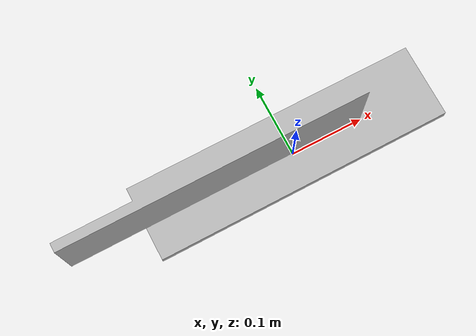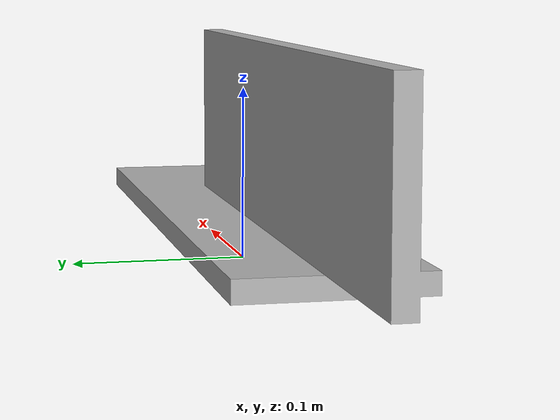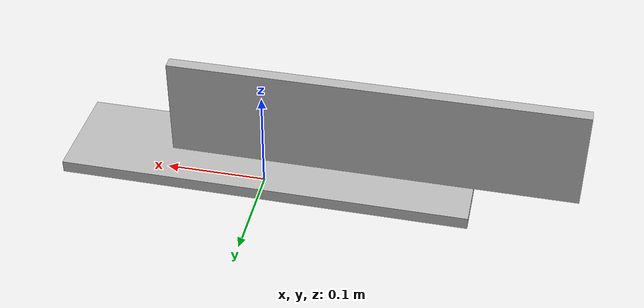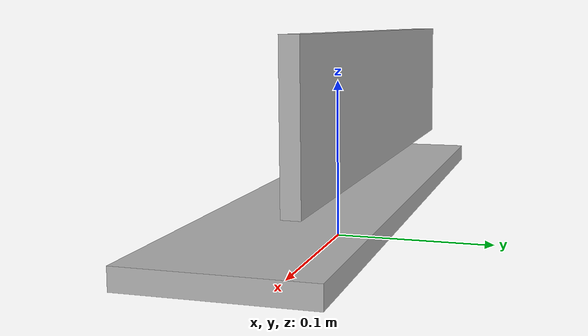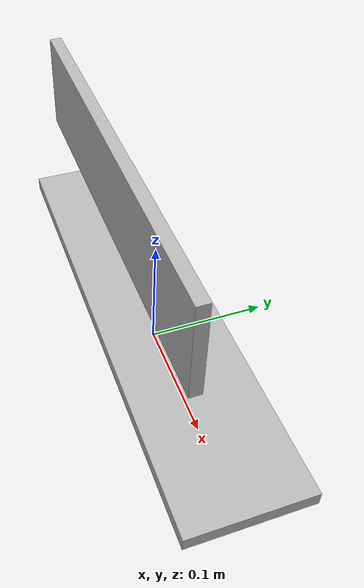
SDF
<?xml version='1.0'?>
<sdf version='1.0'>
  <model name="tee_joint">
	<static>true</static>
	<link name='tee_joint'>
            <pose>0 0 0.0275 1.571 0 0</pose>

            <collision name='collision'>
              <geometry>
                <mesh><uri>model://tee_joint/mesh/tee_joint.stl</uri></mesh>
              </geometry>
		          <surface>
                <friction>
                  <ode>
                    <mu>2</mu>
                    <mu2>2</mu2>
                  </ode>
                </friction>
              </surface>
            </collision>
            <inertial>
              <mass>10000</mass>
              <inertia>
                <ixx>1.0</ixx>
                <ixy>0.0</ixy>
                <ixz>0.0</ixz>
                <iyy>1.0</iyy>
                <iyz>0.0</iyz>
                <izz>1.0</izz>
              </inertia>
            </inertial>

            <visual name='visual'>
              <geometry>
                <mesh><uri>model://tee_joint/mesh/tee_joint.stl</uri></mesh>
              </geometry>
            </visual>
          </link>
  </model>
</sdf>
